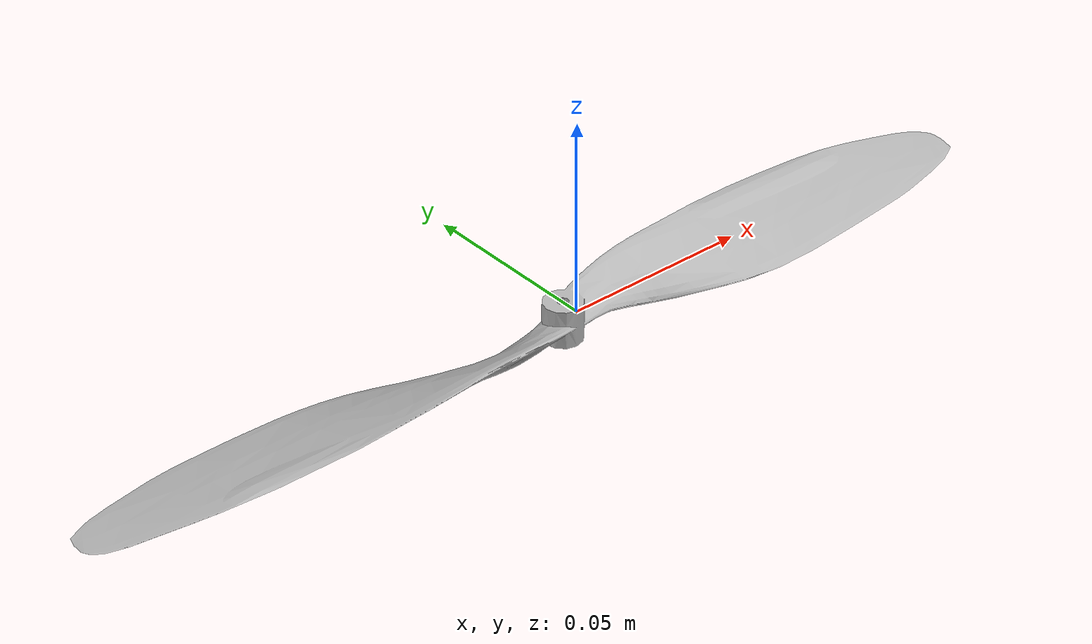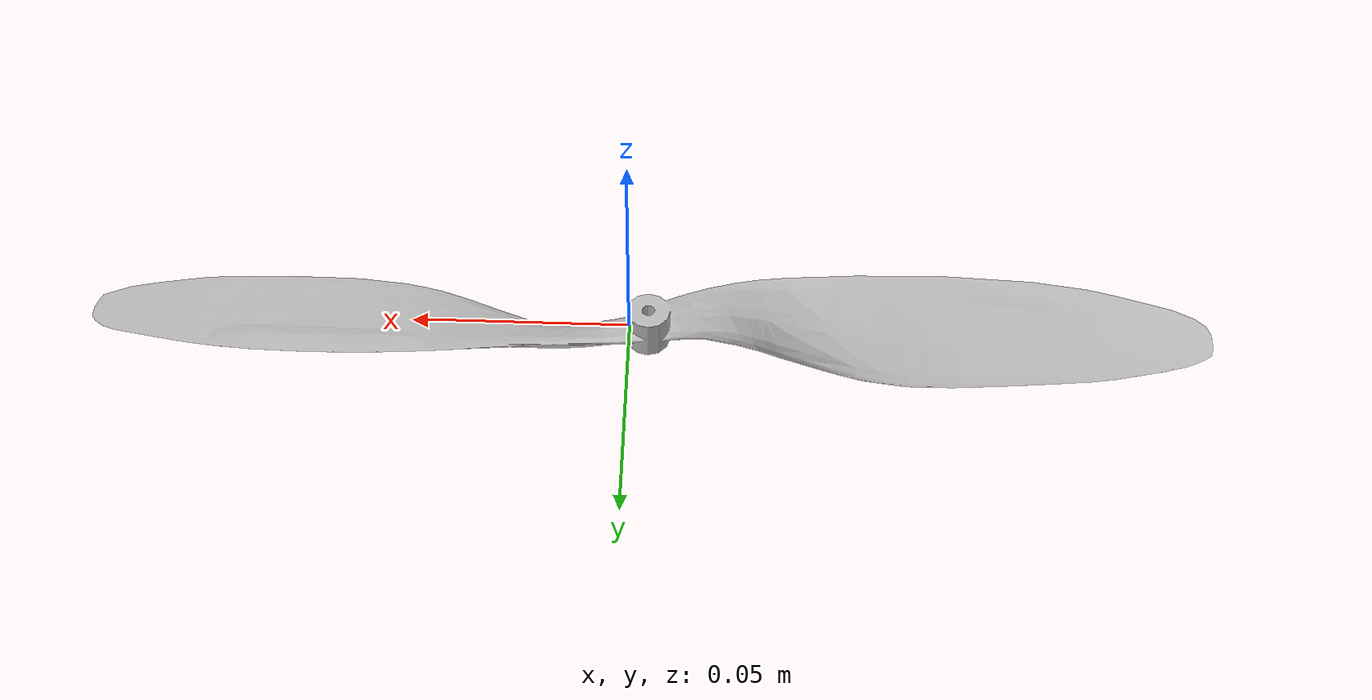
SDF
<?xml version="1.0"?>
<sdf version="1.6">
  <model name="iris">
    <static>true</static>
    <link name="link">
      <visual name="visual">
        <geometry>
          <mesh>
            <uri>model://iris/meshes/iris_prop_ccw.dae</uri>
          </mesh>
        </geometry>
      </visual>
    </link>
  </model>
</sdf>
